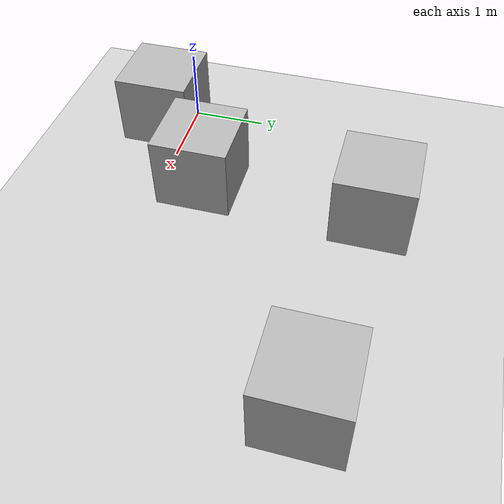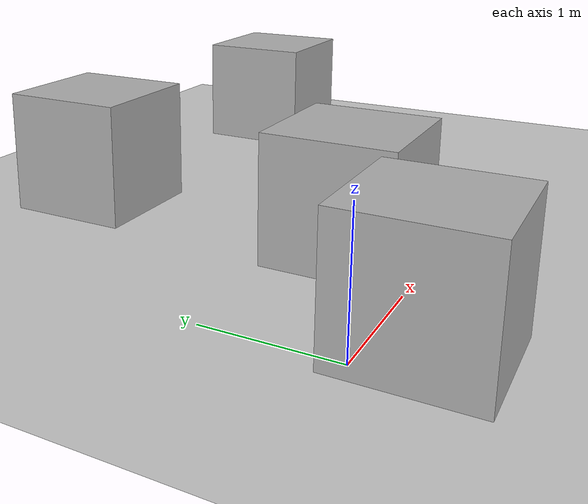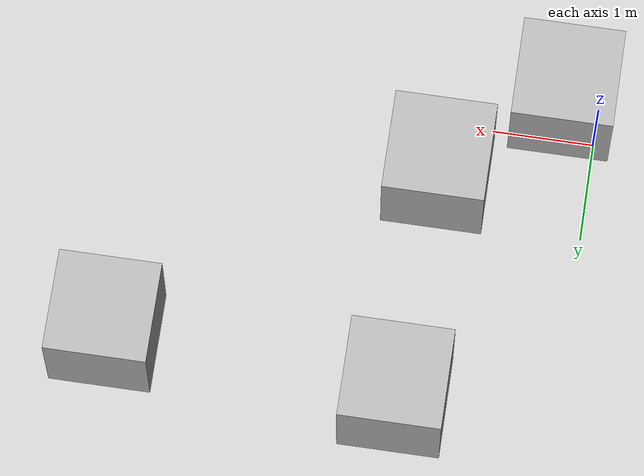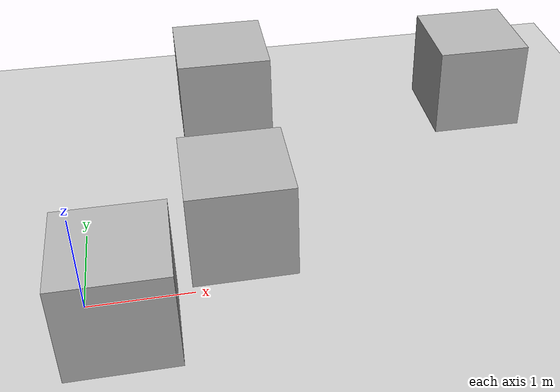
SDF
<sdf version="1.10">
 <world name="empty">
  <physics name="1ms" type="ignored">
   <max_step_size>0.001</max_step_size>
   <real_time_factor>1</real_time_factor>
   <real_time_update_rate>1000</real_time_update_rate>
  </physics>
  <plugin name="gz::sim::systems::Physics" filename="gz-sim-physics-system"/>
  <plugin name="gz::sim::systems::UserCommands" filename="gz-sim-user-commands-system"/>
  <plugin name="gz::sim::systems::SceneBroadcaster" filename="gz-sim-scene-broadcaster-system"/>
  <plugin name="gz::sim::systems::Contact" filename="gz-sim-contact-system"/>
  <plugin filename="gz-sim-imu-system" name="gz::sim::systems::Imu"/>
  <plugin filename="gz-sim-sensors-system" name="gz::sim::systems::Sensors"/>
  <plugin filename="gz-sim-rendering-system" name="gz::sim::systems::Rendering"/>
  <gravity>0 0 -9.8000000000000007</gravity>
  <magnetic_field>5.5644999999999998e-06 2.2875799999999999e-05 -4.2388400000000002e-05</magnetic_field>
  <atmosphere type="adiabatic"/>
  <scene>
   <ambient>0.400000006 0.400000006 0.400000006 1</ambient>
   <background>0.699999988 0.699999988 0.699999988 1</background>
   <shadows>true</shadows>
  </scene>
  <model name="ground_plane">
   <static>true</static>
   <link name="link">
    <collision name="collision">
     <geometry><plane><normal>0 0 1</normal><size>100 100</size></plane></geometry>
    </collision>
    <visual name="visual">
     <geometry><plane><normal>0 0 1</normal><size>100 100</size></plane></geometry>
     <material>
      <ambient>0.800000012 0.800000012 0.800000012 1</ambient>
      <diffuse>0.800000012 0.800000012 0.800000012 1</diffuse>
      <specular>0.800000012 0.800000012 0.800000012 1</specular>
     </material>
    </visual>
    <inertial>
     <mass>1</mass>
     <inertia><ixx>1</ixx><ixy>0</ixy><ixz>0</ixz><iyy>1</iyy><iyz>0</iyz><izz>1</izz></inertia>
    </inertial>
   </link>
  </model>
  <model name="box">
   <pose>0.34008193917519314 -0.35773389231617791 0.5 0 0 0</pose>
   <link name="box_link">
    <inertial>
     <inertia><ixx>0.16666</ixx><ixy>0</ixy><ixz>0</ixz><iyy>0.16666</iyy><iyz>0</iyz><izz>0.16666</izz></inertia>
     <mass>1</mass>
    </inertial>
    <collision name="box_collision"><geometry><box><size>1 1 1</size></box></geometry></collision>
    <visual name="box_visual">
     <geometry><box><size>1 1 1</size></box></geometry>
     <material>
      <ambient>0.300000012 0.300000012 0.300000012 1</ambient>
      <diffuse>0.699999988 0.699999988 0.699999988 1</diffuse>
      <specular>1 1 1 1</specular>
     </material>
    </visual>
   </link>
   <static>false</static>
  </model>
  <model name="box_0">
   <pose>1.4757885912726392 0.57805284016982394 0.5 0 0 0</pose>
   <link name="box_link">
    <inertial>
     <inertia><ixx>0.16666</ixx><ixy>0</ixy><ixz>0</ixz><iyy>0.16666</iyy><iyz>0</iyz><izz>0.16666</izz></inertia>
     <mass>1</mass>
    </inertial>
    <collision name="box_collision"><geometry><box><size>1 1 1</size></box></geometry></collision>
    <visual name="box_visual">
     <geometry><box><size>1 1 1</size></box></geometry>
     <material>
      <ambient>0.300000012 0.300000012 0.300000012 1</ambient>
      <diffuse>0.699999988 0.699999988 0.699999988 1</diffuse>
      <specular>1 1 1 1</specular>
     </material>
    </visual>
   </link>
   <static>false</static>
  </model>
  <model name="box_1">
   <pose>4.4394625806212069 2.6594018066342988 0.5 0 0 0</pose>
   <link name="box_link">
    <inertial>
     <inertia><ixx>0.16666</ixx><ixy>0</ixy><ixz>0</ixz><iyy>0.16666</iyy><iyz>0</iyz><izz>0.16666</izz></inertia>
     <mass>1</mass>
    </inertial>
    <collision name="box_collision"><geometry><box><size>1 1 1</size></box></geometry></collision>
    <visual name="box_visual">
     <geometry><box><size>1 1 1</size></box></geometry>
     <material>
      <ambient>0.300000012 0.300000012 0.300000012 1</ambient>
      <diffuse>0.699999988 0.699999988 0.699999988 1</diffuse>
      <specular>1 1 1 1</specular>
     </material>
    </visual>
   </link>
   <static>false</static>
  </model>
  <model name="box_2">
   <pose>1.5695315418722111 2.9077687538943429 0.5 0 0 0</pose>
   <link name="box_link">
    <inertial>
     <inertia><ixx>0.16666</ixx><ixy>0</ixy><ixz>0</ixz><iyy>0.16666</iyy><iyz>0</iyz><izz>0.16666</izz></inertia>
     <mass>1</mass>
    </inertial>
    <collision name="box_collision"><geometry><box><size>1 1 1</size></box></geometry></collision>
    <visual name="box_visual">
     <geometry><box><size>1 1 1</size></box></geometry>
     <material>
      <ambient>0.300000012 0.300000012 0.300000012 1</ambient>
      <diffuse>0.699999988 0.699999988 0.699999988 1</diffuse>
      <specular>1 1 1 1</specular>
     </material>
    </visual>
   </link>
   <static>false</static>
  </model>
  <light name="sun" type="directional">
   <pose>0 0 10 0 0 0</pose>
   <intensity>1</intensity>
   <direction>-0.5 0.10000000000000001 -0.90000000000000002</direction>
   <diffuse>0.800000012 0.800000012 0.800000012 1</diffuse>
   <specular>0.200000003 0.200000003 0.200000003 1</specular>
   <attenuation>
    <range>1000</range>
    <linear>0.01</linear>
    <constant>0.90000000000000002</constant>
    <quadratic>0.001</quadratic>
   </attenuation>
   <spot><inner_angle>0</inner_angle><outer_angle>0</outer_angle><falloff>0</falloff></spot>
  </light>
 </world>
</sdf>
